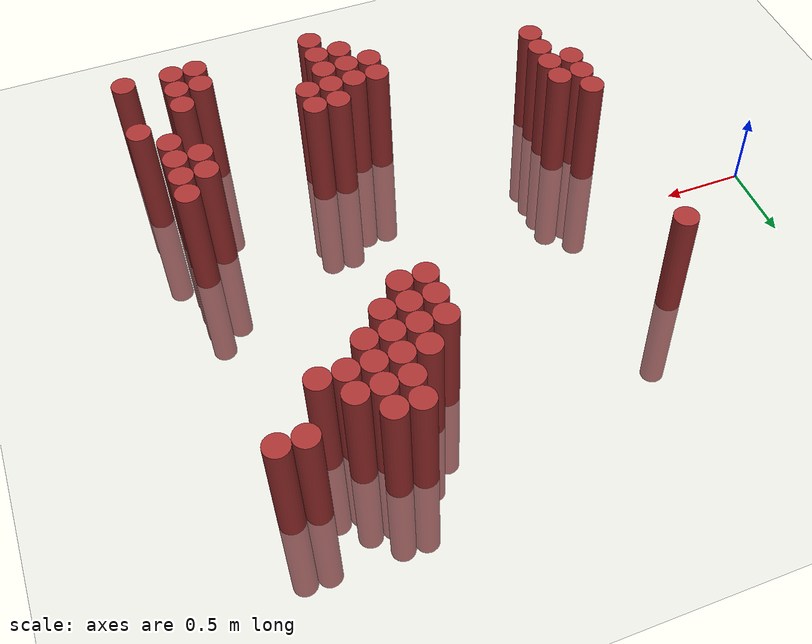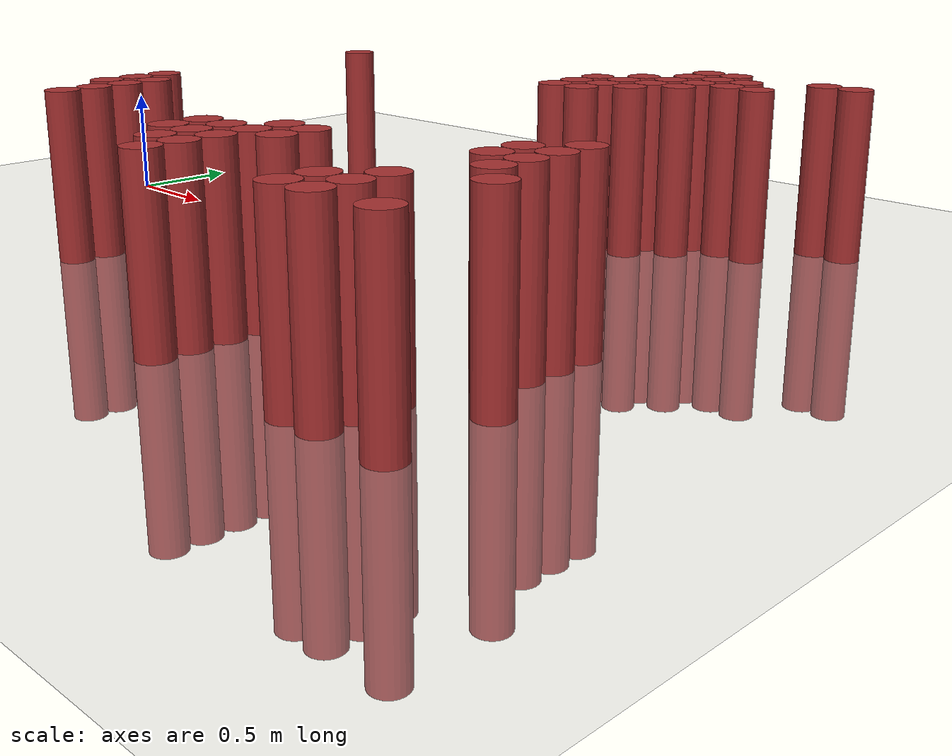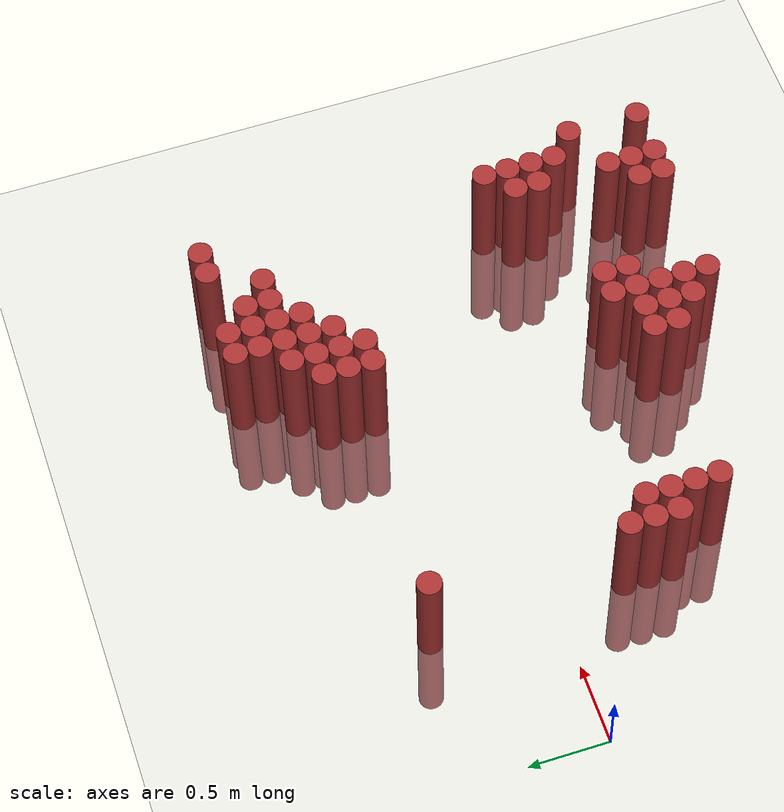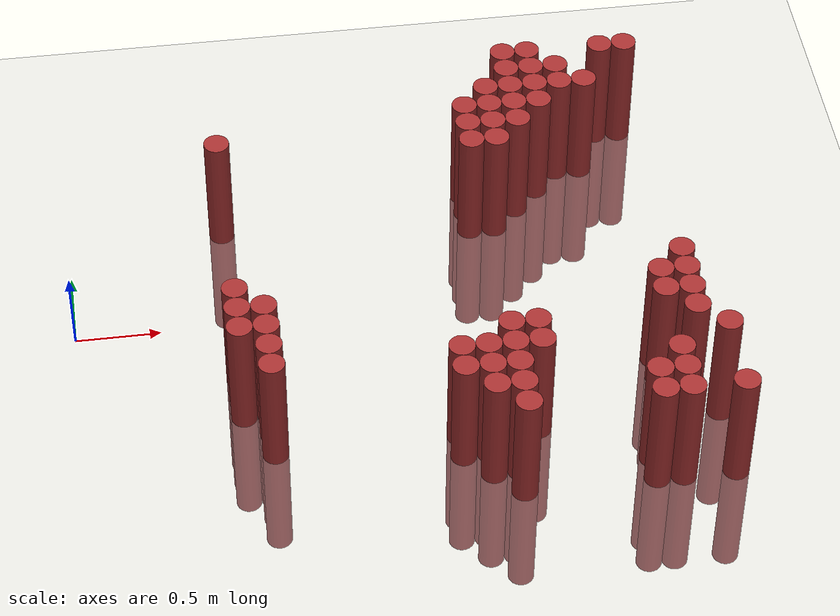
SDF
<sdf version="1.6">
 <world name="default">
  <model name="ground_plane">
   <static>1</static>
   <link name="link">
    <collision name="collision">
     <geometry><plane><normal>0 0 1</normal><size>100 100</size></plane></geometry>
     <surface><friction><ode><mu>100</mu><mu2>50</mu2></ode></friction></surface>
    </collision>
    <visual name="visual">
     <cast_shadows>0</cast_shadows>
     <geometry><plane><normal>0 0 1</normal><size>100 100</size></plane></geometry>
     <material>
      <script><uri>file://media/materials/scripts/gazebo.material</uri><name>Gazebo/Grey</name></script>
     </material>
    </visual>
   </link>
  </model>
  <model name="unit_cylinder_427">
   <static>1</static>
   <pose>0.925000 -0.725000 0.000000 0.000000 0.000000 0.000000</pose>
   <link name="link">
    <inertial>
     <mass>1</mass>
     <inertia><ixx>0.145833</ixx><ixy>0</ixy><ixz>0</ixz><iyy>0.145833</iyy><iyz>0</iyz><izz>0.125</izz></inertia>
    </inertial>
    <collision name="collision">
     <geometry><cylinder><radius>0.075000</radius><length>1.5</length></cylinder></geometry>
    </collision>
    <visual name="visual">
     <geometry><cylinder><radius>0.075000</radius><length>1.5</length></cylinder></geometry>
     <material>
      <ambient>0.648000 0.192000 0.192000 1</ambient>
      <diffuse>0.648000 0.192000 0.192000 1</diffuse>
     </material>
     <material>
      <script><name>Gazebo/Grey</name><uri>file://media/materials/scripts/gazebo.material</uri></script>
     </material>
    </visual>
   </link>
  </model>
  <model name="unit_cylinder_428">
   <static>1</static>
   <pose>0.925000 -0.575000 0.000000 0.000000 0.000000 0.000000</pose>
   <link name="link">
    <inertial>
     <mass>1</mass>
     <inertia><ixx>0.145833</ixx><ixy>0</ixy><ixz>0</ixz><iyy>0.145833</iyy><iyz>0</iyz><izz>0.125</izz></inertia>
    </inertial>
    <collision name="collision">
     <geometry><cylinder><radius>0.075000</radius><length>1.5</length></cylinder></geometry>
    </collision>
    <visual name="visual">
     <geometry><cylinder><radius>0.075000</radius><length>1.5</length></cylinder></geometry>
     <material>
      <ambient>0.648000 0.192000 0.192000 1</ambient>
      <diffuse>0.648000 0.192000 0.192000 1</diffuse>
     </material>
     <material>
      <script><name>Gazebo/Grey</name><uri>file://media/materials/scripts/gazebo.material</uri></script>
     </material>
    </visual>
   </link>
  </model>
  <model name="unit_cylinder_429">
   <static>1</static>
   <pose>0.925000 -0.425000 0.000000 0.000000 0.000000 0.000000</pose>
   <link name="link">
    <inertial>
     <mass>1</mass>
     <inertia><ixx>0.145833</ixx><ixy>0</ixy><ixz>0</ixz><iyy>0.145833</iyy><iyz>0</iyz><izz>0.125</izz></inertia>
    </inertial>
    <collision name="collision">
     <geometry><cylinder><radius>0.075000</radius><length>1.5</length></cylinder></geometry>
    </collision>
    <visual name="visual">
     <geometry><cylinder><radius>0.075000</radius><length>1.5</length></cylinder></geometry>
     <material>
      <ambient>0.648000 0.192000 0.192000 1</ambient>
      <diffuse>0.648000 0.192000 0.192000 1</diffuse>
     </material>
     <material>
      <script><name>Gazebo/Grey</name><uri>file://media/materials/scripts/gazebo.material</uri></script>
     </material>
    </visual>
   </link>
  </model>
  <model name="unit_cylinder_430">
   <static>1</static>
   <pose>0.925000 0.775000 0.000000 0.000000 0.000000 0.000000</pose>
   <link name="link">
    <inertial>
     <mass>1</mass>
     <inertia><ixx>0.145833</ixx><ixy>0</ixy><ixz>0</ixz><iyy>0.145833</iyy><iyz>0</iyz><izz>0.125</izz></inertia>
    </inertial>
    <collision name="collision">
     <geometry><cylinder><radius>0.075000</radius><length>1.5</length></cylinder></geometry>
    </collision>
    <visual name="visual">
     <geometry><cylinder><radius>0.075000</radius><length>1.5</length></cylinder></geometry>
     <material>
      <ambient>0.648000 0.192000 0.192000 1</ambient>
      <diffuse>0.648000 0.192000 0.192000 1</diffuse>
     </material>
     <material>
      <script><name>Gazebo/Grey</name><uri>file://media/materials/scripts/gazebo.material</uri></script>
     </material>
    </visual>
   </link>
  </model>
  <model name="unit_cylinder_432">
   <static>1</static>
   <pose>1.075000 -1.025000 0.000000 0.000000 0.000000 0.000000</pose>
   <link name="link">
    <inertial>
     <mass>1</mass>
     <inertia><ixx>0.145833</ixx><ixy>0</ixy><ixz>0</ixz><iyy>0.145833</iyy><iyz>0</iyz><izz>0.125</izz></inertia>
    </inertial>
    <collision name="collision">
     <geometry><cylinder><radius>0.075000</radius><length>1.5</length></cylinder></geometry>
    </collision>
    <visual name="visual">
     <geometry><cylinder><radius>0.075000</radius><length>1.5</length></cylinder></geometry>
     <material>
      <ambient>0.648000 0.192000 0.192000 1</ambient>
      <diffuse>0.648000 0.192000 0.192000 1</diffuse>
     </material>
     <material>
      <script><name>Gazebo/Grey</name><uri>file://media/materials/scripts/gazebo.material</uri></script>
     </material>
    </visual>
   </link>
  </model>
  <model name="unit_cylinder_433">
   <static>1</static>
   <pose>1.075000 -0.875000 0.000000 0.000000 0.000000 0.000000</pose>
   <link name="link">
    <inertial>
     <mass>1</mass>
     <inertia><ixx>0.145833</ixx><ixy>0</ixy><ixz>0</ixz><iyy>0.145833</iyy><iyz>0</iyz><izz>0.125</izz></inertia>
    </inertial>
    <collision name="collision">
     <geometry><cylinder><radius>0.075000</radius><length>1.5</length></cylinder></geometry>
    </collision>
    <visual name="visual">
     <geometry><cylinder><radius>0.075000</radius><length>1.5</length></cylinder></geometry>
     <material>
      <ambient>0.648000 0.192000 0.192000 1</ambient>
      <diffuse>0.648000 0.192000 0.192000 1</diffuse>
     </material>
     <material>
      <script><name>Gazebo/Grey</name><uri>file://media/materials/scripts/gazebo.material</uri></script>
     </material>
    </visual>
   </link>
  </model>
  <model name="unit_cylinder_434">
   <static>1</static>
   <pose>1.075000 -0.725000 0.000000 0.000000 0.000000 0.000000</pose>
   <link name="link">
    <inertial>
     <mass>1</mass>
     <inertia><ixx>0.145833</ixx><ixy>0</ixy><ixz>0</ixz><iyy>0.145833</iyy><iyz>0</iyz><izz>0.125</izz></inertia>
    </inertial>
    <collision name="collision">
     <geometry><cylinder><radius>0.075000</radius><length>1.5</length></cylinder></geometry>
    </collision>
    <visual name="visual">
     <geometry><cylinder><radius>0.075000</radius><length>1.5</length></cylinder></geometry>
     <material>
      <ambient>0.648000 0.192000 0.192000 1</ambient>
      <diffuse>0.648000 0.192000 0.192000 1</diffuse>
     </material>
     <material>
      <script><name>Gazebo/Grey</name><uri>file://media/materials/scripts/gazebo.material</uri></script>
     </material>
    </visual>
   </link>
  </model>
  <model name="unit_cylinder_435">
   <static>1</static>
   <pose>1.075000 -0.575000 0.000000 0.000000 0.000000 0.000000</pose>
   <link name="link">
    <inertial>
     <mass>1</mass>
     <inertia><ixx>0.145833</ixx><ixy>0</ixy><ixz>0</ixz><iyy>0.145833</iyy><iyz>0</iyz><izz>0.125</izz></inertia>
    </inertial>
    <collision name="collision">
     <geometry><cylinder><radius>0.075000</radius><length>1.5</length></cylinder></geometry>
    </collision>
    <visual name="visual">
     <geometry><cylinder><radius>0.075000</radius><length>1.5</length></cylinder></geometry>
     <material>
      <ambient>0.648000 0.192000 0.192000 1</ambient>
      <diffuse>0.648000 0.192000 0.192000 1</diffuse>
     </material>
     <material>
      <script><name>Gazebo/Grey</name><uri>file://media/materials/scripts/gazebo.material</uri></script>
     </material>
    </visual>
   </link>
  </model>
  <model name="unit_cylinder_446">
   <static>1</static>
   <pose>2.125000 -1.175000 0.000000 0.000000 0.000000 0.000000</pose>
   <link name="link">
    <inertial>
     <mass>1</mass>
     <inertia><ixx>0.145833</ixx><ixy>0</ixy><ixz>0</ixz><iyy>0.145833</iyy><iyz>0</iyz><izz>0.125</izz></inertia>
    </inertial>
    <collision name="collision">
     <geometry><cylinder><radius>0.075000</radius><length>1.5</length></cylinder></geometry>
    </collision>
    <visual name="visual">
     <geometry><cylinder><radius>0.075000</radius><length>1.5</length></cylinder></geometry>
     <material>
      <ambient>0.648000 0.192000 0.192000 1</ambient>
      <diffuse>0.648000 0.192000 0.192000 1</diffuse>
     </material>
     <material>
      <script><name>Gazebo/Grey</name><uri>file://media/materials/scripts/gazebo.material</uri></script>
     </material>
    </visual>
   </link>
  </model>
  <model name="unit_cylinder_447">
   <static>1</static>
   <pose>2.125000 -1.025000 0.000000 0.000000 0.000000 0.000000</pose>
   <link name="link">
    <inertial>
     <mass>1</mass>
     <inertia><ixx>0.145833</ixx><ixy>0</ixy><ixz>0</ixz><iyy>0.145833</iyy><iyz>0</iyz><izz>0.125</izz></inertia>
    </inertial>
    <collision name="collision">
     <geometry><cylinder><radius>0.075000</radius><length>1.5</length></cylinder></geometry>
    </collision>
    <visual name="visual">
     <geometry><cylinder><radius>0.075000</radius><length>1.5</length></cylinder></geometry>
     <material>
      <ambient>0.648000 0.192000 0.192000 1</ambient>
      <diffuse>0.648000 0.192000 0.192000 1</diffuse>
     </material>
     <material>
      <script><name>Gazebo/Grey</name><uri>file://media/materials/scripts/gazebo.material</uri></script>
     </material>
    </visual>
   </link>
  </model>
  <model name="unit_cylinder_457">
   <static>1</static>
   <pose>2.275000 -1.325000 0.000000 0.000000 0.000000 0.000000</pose>
   <link name="link">
    <inertial>
     <mass>1</mass>
     <inertia><ixx>0.145833</ixx><ixy>0</ixy><ixz>0</ixz><iyy>0.145833</iyy><iyz>0</iyz><izz>0.125</izz></inertia>
    </inertial>
    <collision name="collision">
     <geometry><cylinder><radius>0.075000</radius><length>1.5</length></cylinder></geometry>
    </collision>
    <visual name="visual">
     <geometry><cylinder><radius>0.075000</radius><length>1.5</length></cylinder></geometry>
     <material>
      <ambient>0.648000 0.192000 0.192000 1</ambient>
      <diffuse>0.648000 0.192000 0.192000 1</diffuse>
     </material>
     <material>
      <script><name>Gazebo/Grey</name><uri>file://media/materials/scripts/gazebo.material</uri></script>
     </material>
    </visual>
   </link>
  </model>
  <model name="unit_cylinder_458">
   <static>1</static>
   <pose>2.275000 -1.175000 0.000000 0.000000 0.000000 0.000000</pose>
   <link name="link">
    <inertial>
     <mass>1</mass>
     <inertia><ixx>0.145833</ixx><ixy>0</ixy><ixz>0</ixz><iyy>0.145833</iyy><iyz>0</iyz><izz>0.125</izz></inertia>
    </inertial>
    <collision name="collision">
     <geometry><cylinder><radius>0.075000</radius><length>1.5</length></cylinder></geometry>
    </collision>
    <visual name="visual">
     <geometry><cylinder><radius>0.075000</radius><length>1.5</length></cylinder></geometry>
     <material>
      <ambient>0.648000 0.192000 0.192000 1</ambient>
      <diffuse>0.648000 0.192000 0.192000 1</diffuse>
     </material>
     <material>
      <script><name>Gazebo/Grey</name><uri>file://media/materials/scripts/gazebo.material</uri></script>
     </material>
    </visual>
   </link>
  </model>
  <model name="unit_cylinder_459">
   <static>1</static>
   <pose>2.275000 -1.025000 0.000000 0.000000 0.000000 0.000000</pose>
   <link name="link">
    <inertial>
     <mass>1</mass>
     <inertia><ixx>0.145833</ixx><ixy>0</ixy><ixz>0</ixz><iyy>0.145833</iyy><iyz>0</iyz><izz>0.125</izz></inertia>
    </inertial>
    <collision name="collision">
     <geometry><cylinder><radius>0.075000</radius><length>1.5</length></cylinder></geometry>
    </collision>
    <visual name="visual">
     <geometry><cylinder><radius>0.075000</radius><length>1.5</length></cylinder></geometry>
     <material>
      <ambient>0.648000 0.192000 0.192000 1</ambient>
      <diffuse>0.648000 0.192000 0.192000 1</diffuse>
     </material>
     <material>
      <script><name>Gazebo/Grey</name><uri>file://media/materials/scripts/gazebo.material</uri></script>
     </material>
    </visual>
   </link>
  </model>
  <model name="unit_cylinder_463">
   <static>1</static>
   <pose>2.425000 -1.475000 0.000000 0.000000 0.000000 0.000000</pose>
   <link name="link">
    <inertial>
     <mass>1</mass>
     <inertia><ixx>0.145833</ixx><ixy>0</ixy><ixz>0</ixz><iyy>0.145833</iyy><iyz>0</iyz><izz>0.125</izz></inertia>
    </inertial>
    <collision name="collision">
     <geometry><cylinder><radius>0.075000</radius><length>1.5</length></cylinder></geometry>
    </collision>
    <visual name="visual">
     <geometry><cylinder><radius>0.075000</radius><length>1.5</length></cylinder></geometry>
     <material>
      <ambient>0.648000 0.192000 0.192000 1</ambient>
      <diffuse>0.648000 0.192000 0.192000 1</diffuse>
     </material>
     <material>
      <script><name>Gazebo/Grey</name><uri>file://media/materials/scripts/gazebo.material</uri></script>
     </material>
    </visual>
   </link>
  </model>
  <model name="unit_cylinder_464">
   <static>1</static>
   <pose>2.425000 -1.325000 0.000000 0.000000 0.000000 0.000000</pose>
   <link name="link">
    <inertial>
     <mass>1</mass>
     <inertia><ixx>0.145833</ixx><ixy>0</ixy><ixz>0</ixz><iyy>0.145833</iyy><iyz>0</iyz><izz>0.125</izz></inertia>
    </inertial>
    <collision name="collision">
     <geometry><cylinder><radius>0.075000</radius><length>1.5</length></cylinder></geometry>
    </collision>
    <visual name="visual">
     <geometry><cylinder><radius>0.075000</radius><length>1.5</length></cylinder></geometry>
     <material>
      <ambient>0.648000 0.192000 0.192000 1</ambient>
      <diffuse>0.648000 0.192000 0.192000 1</diffuse>
     </material>
     <material>
      <script><name>Gazebo/Grey</name><uri>file://media/materials/scripts/gazebo.material</uri></script>
     </material>
    </visual>
   </link>
  </model>
  <model name="unit_cylinder_465">
   <static>1</static>
   <pose>2.425000 -1.175000 0.000000 0.000000 0.000000 0.000000</pose>
   <link name="link">
    <inertial>
     <mass>1</mass>
     <inertia><ixx>0.145833</ixx><ixy>0</ixy><ixz>0</ixz><iyy>0.145833</iyy><iyz>0</iyz><izz>0.125</izz></inertia>
    </inertial>
    <collision name="collision">
     <geometry><cylinder><radius>0.075000</radius><length>1.5</length></cylinder></geometry>
    </collision>
    <visual name="visual">
     <geometry><cylinder><radius>0.075000</radius><length>1.5</length></cylinder></geometry>
     <material>
      <ambient>0.648000 0.192000 0.192000 1</ambient>
      <diffuse>0.648000 0.192000 0.192000 1</diffuse>
     </material>
     <material>
      <script><name>Gazebo/Grey</name><uri>file://media/materials/scripts/gazebo.material</uri></script>
     </material>
    </visual>
   </link>
  </model>
  <model name="unit_cylinder_466">
   <static>1</static>
   <pose>2.425000 -1.025000 0.000000 0.000000 0.000000 0.000000</pose>
   <link name="link">
    <inertial>
     <mass>1</mass>
     <inertia><ixx>0.145833</ixx><ixy>0</ixy><ixz>0</ixz><iyy>0.145833</iyy><iyz>0</iyz><izz>0.125</izz></inertia>
    </inertial>
    <collision name="collision">
     <geometry><cylinder><radius>0.075000</radius><length>1.5</length></cylinder></geometry>
    </collision>
    <visual name="visual">
     <geometry><cylinder><radius>0.075000</radius><length>1.5</length></cylinder></geometry>
     <material>
      <ambient>0.648000 0.192000 0.192000 1</ambient>
      <diffuse>0.648000 0.192000 0.192000 1</diffuse>
     </material>
     <material>
      <script><name>Gazebo/Grey</name><uri>file://media/materials/scripts/gazebo.material</uri></script>
     </material>
    </visual>
   </link>
  </model>
  <model name="unit_cylinder_467">
   <static>1</static>
   <pose>2.425000 -0.875000 0.000000 0.000000 0.000000 0.000000</pose>
   <link name="link">
    <inertial>
     <mass>1</mass>
     <inertia><ixx>0.145833</ixx><ixy>0</ixy><ixz>0</ixz><iyy>0.145833</iyy><iyz>0</iyz><izz>0.125</izz></inertia>
    </inertial>
    <collision name="collision">
     <geometry><cylinder><radius>0.075000</radius><length>1.5</length></cylinder></geometry>
    </collision>
    <visual name="visual">
     <geometry><cylinder><radius>0.075000</radius><length>1.5</length></cylinder></geometry>
     <material>
      <ambient>0.648000 0.192000 0.192000 1</ambient>
      <diffuse>0.648000 0.192000 0.192000 1</diffuse>
     </material>
     <material>
      <script><name>Gazebo/Grey</name><uri>file://media/materials/scripts/gazebo.material</uri></script>
     </material>
    </visual>
   </link>
  </model>
  <model name="unit_cylinder_468">
   <static>1</static>
   <pose>2.425000 0.625000 0.000000 0.000000 0.000000 0.000000</pose>
   <link name="link">
    <inertial>
     <mass>1</mass>
     <inertia><ixx>0.145833</ixx><ixy>0</ixy><ixz>0</ixz><iyy>0.145833</iyy><iyz>0</iyz><izz>0.125</izz></inertia>
    </inertial>
    <collision name="collision">
     <geometry><cylinder><radius>0.075000</radius><length>1.5</length></cylinder></geometry>
    </collision>
    <visual name="visual">
     <geometry><cylinder><radius>0.075000</radius><length>1.5</length></cylinder></geometry>
     <material>
      <ambient>0.648000 0.192000 0.192000 1</ambient>
      <diffuse>0.648000 0.192000 0.192000 1</diffuse>
     </material>
     <material>
      <script><name>Gazebo/Grey</name><uri>file://media/materials/scripts/gazebo.material</uri></script>
     </material>
    </visual>
   </link>
  </model>
  <model name="unit_cylinder_469">
   <static>1</static>
   <pose>2.425000 0.775000 0.000000 0.000000 0.000000 0.000000</pose>
   <link name="link">
    <inertial>
     <mass>1</mass>
     <inertia><ixx>0.145833</ixx><ixy>0</ixy><ixz>0</ixz><iyy>0.145833</iyy><iyz>0</iyz><izz>0.125</izz></inertia>
    </inertial>
    <collision name="collision">
     <geometry><cylinder><radius>0.075000</radius><length>1.5</length></cylinder></geometry>
    </collision>
    <visual name="visual">
     <geometry><cylinder><radius>0.075000</radius><length>1.5</length></cylinder></geometry>
     <material>
      <ambient>0.648000 0.192000 0.192000 1</ambient>
      <diffuse>0.648000 0.192000 0.192000 1</diffuse>
     </material>
     <material>
      <script><name>Gazebo/Grey</name><uri>file://media/materials/scripts/gazebo.material</uri></script>
     </material>
    </visual>
   </link>
  </model>
  <model name="unit_cylinder_470">
   <static>1</static>
   <pose>2.425000 0.925000 0.000000 0.000000 0.000000 0.000000</pose>
   <link name="link">
    <inertial>
     <mass>1</mass>
     <inertia><ixx>0.145833</ixx><ixy>0</ixy><ixz>0</ixz><iyy>0.145833</iyy><iyz>0</iyz><izz>0.125</izz></inertia>
    </inertial>
    <collision name="collision">
     <geometry><cylinder><radius>0.075000</radius><length>1.5</length></cylinder></geometry>
    </collision>
    <visual name="visual">
     <geometry><cylinder><radius>0.075000</radius><length>1.5</length></cylinder></geometry>
     <material>
      <ambient>0.648000 0.192000 0.192000 1</ambient>
      <diffuse>0.648000 0.192000 0.192000 1</diffuse>
     </material>
     <material>
      <script><name>Gazebo/Grey</name><uri>file://media/materials/scripts/gazebo.material</uri></script>
     </material>
    </visual>
   </link>
  </model>
  <model name="unit_cylinder_475">
   <static>1</static>
   <pose>2.575000 -1.025000 0.000000 0.000000 0.000000 0.000000</pose>
   <link name="link">
    <inertial>
     <mass>1</mass>
     <inertia><ixx>0.145833</ixx><ixy>0</ixy><ixz>0</ixz><iyy>0.145833</iyy><iyz>0</iyz><izz>0.125</izz></inertia>
    </inertial>
    <collision name="collision">
     <geometry><cylinder><radius>0.075000</radius><length>1.5</length></cylinder></geometry>
    </collision>
    <visual name="visual">
     <geometry><cylinder><radius>0.075000</radius><length>1.5</length></cylinder></geometry>
     <material>
      <ambient>0.648000 0.192000 0.192000 1</ambient>
      <diffuse>0.648000 0.192000 0.192000 1</diffuse>
     </material>
     <material>
      <script><name>Gazebo/Grey</name><uri>file://media/materials/scripts/gazebo.material</uri></script>
     </material>
    </visual>
   </link>
  </model>
  <model name="unit_cylinder_476">
   <static>1</static>
   <pose>2.575000 -0.875000 0.000000 0.000000 0.000000 0.000000</pose>
   <link name="link">
    <inertial>
     <mass>1</mass>
     <inertia><ixx>0.145833</ixx><ixy>0</ixy><ixz>0</ixz><iyy>0.145833</iyy><iyz>0</iyz><izz>0.125</izz></inertia>
    </inertial>
    <collision name="collision">
     <geometry><cylinder><radius>0.075000</radius><length>1.5</length></cylinder></geometry>
    </collision>
    <visual name="visual">
     <geometry><cylinder><radius>0.075000</radius><length>1.5</length></cylinder></geometry>
     <material>
      <ambient>0.648000 0.192000 0.192000 1</ambient>
      <diffuse>0.648000 0.192000 0.192000 1</diffuse>
     </material>
     <material>
      <script><name>Gazebo/Grey</name><uri>file://media/materials/scripts/gazebo.material</uri></script>
     </material>
    </visual>
   </link>
  </model>
  <model name="unit_cylinder_477">
   <static>1</static>
   <pose>2.575000 0.625000 0.000000 0.000000 0.000000 0.000000</pose>
   <link name="link">
    <inertial>
     <mass>1</mass>
     <inertia><ixx>0.145833</ixx><ixy>0</ixy><ixz>0</ixz><iyy>0.145833</iyy><iyz>0</iyz><izz>0.125</izz></inertia>
    </inertial>
    <collision name="collision">
     <geometry><cylinder><radius>0.075000</radius><length>1.5</length></cylinder></geometry>
    </collision>
    <visual name="visual">
     <geometry><cylinder><radius>0.075000</radius><length>1.5</length></cylinder></geometry>
     <material>
      <ambient>0.648000 0.192000 0.192000 1</ambient>
      <diffuse>0.648000 0.192000 0.192000 1</diffuse>
     </material>
     <material>
      <script><name>Gazebo/Grey</name><uri>file://media/materials/scripts/gazebo.material</uri></script>
     </material>
    </visual>
   </link>
  </model>
  <model name="unit_cylinder_478">
   <static>1</static>
   <pose>2.575000 0.775000 0.000000 0.000000 0.000000 0.000000</pose>
   <link name="link">
    <inertial>
     <mass>1</mass>
     <inertia><ixx>0.145833</ixx><ixy>0</ixy><ixz>0</ixz><iyy>0.145833</iyy><iyz>0</iyz><izz>0.125</izz></inertia>
    </inertial>
    <collision name="collision">
     <geometry><cylinder><radius>0.075000</radius><length>1.5</length></cylinder></geometry>
    </collision>
    <visual name="visual">
     <geometry><cylinder><radius>0.075000</radius><length>1.5</length></cylinder></geometry>
     <material>
      <ambient>0.648000 0.192000 0.192000 1</ambient>
      <diffuse>0.648000 0.192000 0.192000 1</diffuse>
     </material>
     <material>
      <script><name>Gazebo/Grey</name><uri>file://media/materials/scripts/gazebo.material</uri></script>
     </material>
    </visual>
   </link>
  </model>
  <model name="unit_cylinder_479">
   <static>1</static>
   <pose>2.575000 0.925000 0.000000 0.000000 0.000000 0.000000</pose>
   <link name="link">
    <inertial>
     <mass>1</mass>
     <inertia><ixx>0.145833</ixx><ixy>0</ixy><ixz>0</ixz><iyy>0.145833</iyy><iyz>0</iyz><izz>0.125</izz></inertia>
    </inertial>
    <collision name="collision">
     <geometry><cylinder><radius>0.075000</radius><length>1.5</length></cylinder></geometry>
    </collision>
    <visual name="visual">
     <geometry><cylinder><radius>0.075000</radius><length>1.5</length></cylinder></geometry>
     <material>
      <ambient>0.648000 0.192000 0.192000 1</ambient>
      <diffuse>0.648000 0.192000 0.192000 1</diffuse>
     </material>
     <material>
      <script><name>Gazebo/Grey</name><uri>file://media/materials/scripts/gazebo.material</uri></script>
     </material>
    </visual>
   </link>
  </model>
  <model name="unit_cylinder_480">
   <static>1</static>
   <pose>2.575000 1.075000 0.000000 0.000000 0.000000 0.000000</pose>
   <link name="link">
    <inertial>
     <mass>1</mass>
     <inertia><ixx>0.145833</ixx><ixy>0</ixy><ixz>0</ixz><iyy>0.145833</iyy><iyz>0</iyz><izz>0.125</izz></inertia>
    </inertial>
    <collision name="collision">
     <geometry><cylinder><radius>0.075000</radius><length>1.5</length></cylinder></geometry>
    </collision>
    <visual name="visual">
     <geometry><cylinder><radius>0.075000</radius><length>1.5</length></cylinder></geometry>
     <material>
      <ambient>0.648000 0.192000 0.192000 1</ambient>
      <diffuse>0.648000 0.192000 0.192000 1</diffuse>
     </material>
     <material>
      <script><name>Gazebo/Grey</name><uri>file://media/materials/scripts/gazebo.material</uri></script>
     </material>
    </visual>
   </link>
  </model>
  <model name="unit_cylinder_486">
   <static>1</static>
   <pose>2.725000 0.775000 0.000000 0.000000 0.000000 0.000000</pose>
   <link name="link">
    <inertial>
     <mass>1</mass>
     <inertia><ixx>0.145833</ixx><ixy>0</ixy><ixz>0</ixz><iyy>0.145833</iyy><iyz>0</iyz><izz>0.125</izz></inertia>
    </inertial>
    <collision name="collision">
     <geometry><cylinder><radius>0.075000</radius><length>1.5</length></cylinder></geometry>
    </collision>
    <visual name="visual">
     <geometry><cylinder><radius>0.075000</radius><length>1.5</length></cylinder></geometry>
     <material>
      <ambient>0.648000 0.192000 0.192000 1</ambient>
      <diffuse>0.648000 0.192000 0.192000 1</diffuse>
     </material>
     <material>
      <script><name>Gazebo/Grey</name><uri>file://media/materials/scripts/gazebo.material</uri></script>
     </material>
    </visual>
   </link>
  </model>
  <model name="unit_cylinder_487">
   <static>1</static>
   <pose>2.725000 0.925000 0.000000 0.000000 0.000000 0.000000</pose>
   <link name="link">
    <inertial>
     <mass>1</mass>
     <inertia><ixx>0.145833</ixx><ixy>0</ixy><ixz>0</ixz><iyy>0.145833</iyy><iyz>0</iyz><izz>0.125</izz></inertia>
    </inertial>
    <collision name="collision">
     <geometry><cylinder><radius>0.075000</radius><length>1.5</length></cylinder></geometry>
    </collision>
    <visual name="visual">
     <geometry><cylinder><radius>0.075000</radius><length>1.5</length></cylinder></geometry>
     <material>
      <ambient>0.648000 0.192000 0.192000 1</ambient>
      <diffuse>0.648000 0.192000 0.192000 1</diffuse>
     </material>
     <material>
      <script><name>Gazebo/Grey</name><uri>file://media/materials/scripts/gazebo.material</uri></script>
     </material>
    </visual>
   </link>
  </model>
  <model name="unit_cylinder_488">
   <static>1</static>
   <pose>2.725000 1.075000 0.000000 0.000000 0.000000 0.000000</pose>
   <link name="link">
    <inertial>
     <mass>1</mass>
     <inertia><ixx>0.145833</ixx><ixy>0</ixy><ixz>0</ixz><iyy>0.145833</iyy><iyz>0</iyz><izz>0.125</izz></inertia>
    </inertial>
    <collision name="collision">
     <geometry><cylinder><radius>0.075000</radius><length>1.5</length></cylinder></geometry>
    </collision>
    <visual name="visual">
     <geometry><cylinder><radius>0.075000</radius><length>1.5</length></cylinder></geometry>
     <material>
      <ambient>0.648000 0.192000 0.192000 1</ambient>
      <diffuse>0.648000 0.192000 0.192000 1</diffuse>
     </material>
     <material>
      <script><name>Gazebo/Grey</name><uri>file://media/materials/scripts/gazebo.material</uri></script>
     </material>
    </visual>
   </link>
  </model>
  <model name="unit_cylinder_489">
   <static>1</static>
   <pose>2.725000 1.225000 0.000000 0.000000 0.000000 0.000000</pose>
   <link name="link">
    <inertial>
     <mass>1</mass>
     <inertia><ixx>0.145833</ixx><ixy>0</ixy><ixz>0</ixz><iyy>0.145833</iyy><iyz>0</iyz><izz>0.125</izz></inertia>
    </inertial>
    <collision name="collision">
     <geometry><cylinder><radius>0.075000</radius><length>1.5</length></cylinder></geometry>
    </collision>
    <visual name="visual">
     <geometry><cylinder><radius>0.075000</radius><length>1.5</length></cylinder></geometry>
     <material>
      <ambient>0.648000 0.192000 0.192000 1</ambient>
      <diffuse>0.648000 0.192000 0.192000 1</diffuse>
     </material>
     <material>
      <script><name>Gazebo/Grey</name><uri>file://media/materials/scripts/gazebo.material</uri></script>
     </material>
    </visual>
   </link>
  </model>
  <model name="unit_cylinder_490">
   <static>1</static>
   <pose>2.725000 1.375000 0.000000 0.000000 0.000000 0.000000</pose>
   <link name="link">
    <inertial>
     <mass>1</mass>
     <inertia><ixx>0.145833</ixx><ixy>0</ixy><ixz>0</ixz><iyy>0.145833</iyy><iyz>0</iyz><izz>0.125</izz></inertia>
    </inertial>
    <collision name="collision">
     <geometry><cylinder><radius>0.075000</radius><length>1.5</length></cylinder></geometry>
    </collision>
    <visual name="visual">
     <geometry><cylinder><radius>0.075000</radius><length>1.5</length></cylinder></geometry>
     <material>
      <ambient>0.648000 0.192000 0.192000 1</ambient>
      <diffuse>0.648000 0.192000 0.192000 1</diffuse>
     </material>
     <material>
      <script><name>Gazebo/Grey</name><uri>file://media/materials/scripts/gazebo.material</uri></script>
     </material>
    </visual>
   </link>
  </model>
  <model name="unit_cylinder_500">
   <static>1</static>
   <pose>2.875000 0.925000 0.000000 0.000000 0.000000 0.000000</pose>
   <link name="link">
    <inertial>
     <mass>1</mass>
     <inertia><ixx>0.145833</ixx><ixy>0</ixy><ixz>0</ixz><iyy>0.145833</iyy><iyz>0</iyz><izz>0.125</izz></inertia>
    </inertial>
    <collision name="collision">
     <geometry><cylinder><radius>0.075000</radius><length>1.5</length></cylinder></geometry>
    </collision>
    <visual name="visual">
     <geometry><cylinder><radius>0.075000</radius><length>1.5</length></cylinder></geometry>
     <material>
      <ambient>0.648000 0.192000 0.192000 1</ambient>
      <diffuse>0.648000 0.192000 0.192000 1</diffuse>
     </material>
     <material>
      <script><name>Gazebo/Grey</name><uri>file://media/materials/scripts/gazebo.material</uri></script>
     </material>
    </visual>
   </link>
  </model>
  <model name="unit_cylinder_501">
   <static>1</static>
   <pose>2.875000 1.075000 0.000000 0.000000 0.000000 0.000000</pose>
   <link name="link">
    <inertial>
     <mass>1</mass>
     <inertia><ixx>0.145833</ixx><ixy>0</ixy><ixz>0</ixz><iyy>0.145833</iyy><iyz>0</iyz><izz>0.125</izz></inertia>
    </inertial>
    <collision name="collision">
     <geometry><cylinder><radius>0.075000</radius><length>1.5</length></cylinder></geometry>
    </collision>
    <visual name="visual">
     <geometry><cylinder><radius>0.075000</radius><length>1.5</length></cylinder></geometry>
     <material>
      <ambient>0.648000 0.192000 0.192000 1</ambient>
      <diffuse>0.648000 0.192000 0.192000 1</diffuse>
     </material>
     <material>
      <script><name>Gazebo/Grey</name><uri>file://media/materials/scripts/gazebo.material</uri></script>
     </material>
    </visual>
   </link>
  </model>
  <model name="unit_cylinder_502">
   <static>1</static>
   <pose>2.875000 1.225000 0.000000 0.000000 0.000000 0.000000</pose>
   <link name="link">
    <inertial>
     <mass>1</mass>
     <inertia><ixx>0.145833</ixx><ixy>0</ixy><ixz>0</ixz><iyy>0.145833</iyy><iyz>0</iyz><izz>0.125</izz></inertia>
    </inertial>
    <collision name="collision">
     <geometry><cylinder><radius>0.075000</radius><length>1.5</length></cylinder></geometry>
    </collision>
    <visual name="visual">
     <geometry><cylinder><radius>0.075000</radius><length>1.5</length></cylinder></geometry>
     <material>
      <ambient>0.648000 0.192000 0.192000 1</ambient>
      <diffuse>0.648000 0.192000 0.192000 1</diffuse>
     </material>
     <material>
      <script><name>Gazebo/Grey</name><uri>file://media/materials/scripts/gazebo.material</uri></script>
     </material>
    </visual>
   </link>
  </model>
  <model name="unit_cylinder_503">
   <static>1</static>
   <pose>2.875000 1.375000 0.000000 0.000000 0.000000 0.000000</pose>
   <link name="link">
    <inertial>
     <mass>1</mass>
     <inertia><ixx>0.145833</ixx><ixy>0</ixy><ixz>0</ixz><iyy>0.145833</iyy><iyz>0</iyz><izz>0.125</izz></inertia>
    </inertial>
    <collision name="collision">
     <geometry><cylinder><radius>0.075000</radius><length>1.5</length></cylinder></geometry>
    </collision>
    <visual name="visual">
     <geometry><cylinder><radius>0.075000</radius><length>1.5</length></cylinder></geometry>
     <material>
      <ambient>0.648000 0.192000 0.192000 1</ambient>
      <diffuse>0.648000 0.192000 0.192000 1</diffuse>
     </material>
     <material>
      <script><name>Gazebo/Grey</name><uri>file://media/materials/scripts/gazebo.material</uri></script>
     </material>
    </visual>
   </link>
  </model>
  <model name="unit_cylinder_514">
   <static>1</static>
   <pose>3.025000 1.075000 0.000000 0.000000 0.000000 0.000000</pose>
   <link name="link">
    <inertial>
     <mass>1</mass>
     <inertia><ixx>0.145833</ixx><ixy>0</ixy><ixz>0</ixz><iyy>0.145833</iyy><iyz>0</iyz><izz>0.125</izz></inertia>
    </inertial>
    <collision name="collision">
     <geometry><cylinder><radius>0.075000</radius><length>1.5</length></cylinder></geometry>
    </collision>
    <visual name="visual">
     <geometry><cylinder><radius>0.075000</radius><length>1.5</length></cylinder></geometry>
     <material>
      <ambient>0.648000 0.192000 0.192000 1</ambient>
      <diffuse>0.648000 0.192000 0.192000 1</diffuse>
     </material>
     <material>
      <script><name>Gazebo/Grey</name><uri>file://media/materials/scripts/gazebo.material</uri></script>
     </material>
    </visual>
   </link>
  </model>
  <model name="unit_cylinder_515">
   <static>1</static>
   <pose>3.025000 1.225000 0.000000 0.000000 0.000000 0.000000</pose>
   <link name="link">
    <inertial>
     <mass>1</mass>
     <inertia><ixx>0.145833</ixx><ixy>0</ixy><ixz>0</ixz><iyy>0.145833</iyy><iyz>0</iyz><izz>0.125</izz></inertia>
    </inertial>
    <collision name="collision">
     <geometry><cylinder><radius>0.075000</radius><length>1.5</length></cylinder></geometry>
    </collision>
    <visual name="visual">
     <geometry><cylinder><radius>0.075000</radius><length>1.5</length></cylinder></geometry>
     <material>
      <ambient>0.648000 0.192000 0.192000 1</ambient>
      <diffuse>0.648000 0.192000 0.192000 1</diffuse>
     </material>
     <material>
      <script><name>Gazebo/Grey</name><uri>file://media/materials/scripts/gazebo.material</uri></script>
     </material>
    </visual>
   </link>
  </model>
  <model name="unit_cylinder_525">
   <static>1</static>
   <pose>3.175000 -1.475000 0.000000 0.000000 0.000000 0.000000</pose>
   <link name="link">
    <inertial>
     <mass>1</mass>
     <inertia><ixx>0.145833</ixx><ixy>0</ixy><ixz>0</ixz><iyy>0.145833</iyy><iyz>0</iyz><izz>0.125</izz></inertia>
    </inertial>
    <collision name="collision">
     <geometry><cylinder><radius>0.075000</radius><length>1.5</length></cylinder></geometry>
    </collision>
    <visual name="visual">
     <geometry><cylinder><radius>0.075000</radius><length>1.5</length></cylinder></geometry>
     <material>
      <ambient>0.648000 0.192000 0.192000 1</ambient>
      <diffuse>0.648000 0.192000 0.192000 1</diffuse>
     </material>
     <material>
      <script><name>Gazebo/Grey</name><uri>file://media/materials/scripts/gazebo.material</uri></script>
     </material>
    </visual>
   </link>
  </model>
  <model name="unit_cylinder_526">
   <static>1</static>
   <pose>3.175000 -1.325000 0.000000 0.000000 0.000000 0.000000</pose>
   <link name="link">
    <inertial>
     <mass>1</mass>
     <inertia><ixx>0.145833</ixx><ixy>0</ixy><ixz>0</ixz><iyy>0.145833</iyy><iyz>0</iyz><izz>0.125</izz></inertia>
    </inertial>
    <collision name="collision">
     <geometry><cylinder><radius>0.075000</radius><length>1.5</length></cylinder></geometry>
    </collision>
    <visual name="visual">
     <geometry><cylinder><radius>0.075000</radius><length>1.5</length></cylinder></geometry>
     <material>
      <ambient>0.648000 0.192000 0.192000 1</ambient>
      <diffuse>0.648000 0.192000 0.192000 1</diffuse>
     </material>
     <material>
      <script><name>Gazebo/Grey</name><uri>file://media/materials/scripts/gazebo.material</uri></script>
     </material>
    </visual>
   </link>
  </model>
  <model name="unit_cylinder_527">
   <static>1</static>
   <pose>3.175000 1.075000 0.000000 0.000000 0.000000 0.000000</pose>
   <link name="link">
    <inertial>
     <mass>1</mass>
     <inertia><ixx>0.145833</ixx><ixy>0</ixy><ixz>0</ixz><iyy>0.145833</iyy><iyz>0</iyz><izz>0.125</izz></inertia>
    </inertial>
    <collision name="collision">
     <geometry><cylinder><radius>0.075000</radius><length>1.5</length></cylinder></geometry>
    </collision>
    <visual name="visual">
     <geometry><cylinder><radius>0.075000</radius><length>1.5</length></cylinder></geometry>
     <material>
      <ambient>0.648000 0.192000 0.192000 1</ambient>
      <diffuse>0.648000 0.192000 0.192000 1</diffuse>
     </material>
     <material>
      <script><name>Gazebo/Grey</name><uri>file://media/materials/scripts/gazebo.material</uri></script>
     </material>
    </visual>
   </link>
  </model>
  <model name="unit_cylinder_532">
   <static>1</static>
   <pose>3.325000 -1.475000 0.000000 0.000000 0.000000 0.000000</pose>
   <link name="link">
    <inertial>
     <mass>1</mass>
     <inertia><ixx>0.145833</ixx><ixy>0</ixy><ixz>0</ixz><iyy>0.145833</iyy><iyz>0</iyz><izz>0.125</izz></inertia>
    </inertial>
    <collision name="collision">
     <geometry><cylinder><radius>0.075000</radius><length>1.5</length></cylinder></geometry>
    </collision>
    <visual name="visual">
     <geometry><cylinder><radius>0.075000</radius><length>1.5</length></cylinder></geometry>
     <material>
      <ambient>0.648000 0.192000 0.192000 1</ambient>
      <diffuse>0.648000 0.192000 0.192000 1</diffuse>
     </material>
     <material>
      <script><name>Gazebo/Grey</name><uri>file://media/materials/scripts/gazebo.material</uri></script>
     </material>
    </visual>
   </link>
  </model>
  <model name="unit_cylinder_533">
   <static>1</static>
   <pose>3.325000 -1.325000 0.000000 0.000000 0.000000 0.000000</pose>
   <link name="link">
    <inertial>
     <mass>1</mass>
     <inertia><ixx>0.145833</ixx><ixy>0</ixy><ixz>0</ixz><iyy>0.145833</iyy><iyz>0</iyz><izz>0.125</izz></inertia>
    </inertial>
    <collision name="collision">
     <geometry><cylinder><radius>0.075000</radius><length>1.5</length></cylinder></geometry>
    </collision>
    <visual name="visual">
     <geometry><cylinder><radius>0.075000</radius><length>1.5</length></cylinder></geometry>
     <material>
      <ambient>0.648000 0.192000 0.192000 1</ambient>
      <diffuse>0.648000 0.192000 0.192000 1</diffuse>
     </material>
     <material>
      <script><name>Gazebo/Grey</name><uri>file://media/materials/scripts/gazebo.material</uri></script>
     </material>
    </visual>
   </link>
  </model>
  <model name="unit_cylinder_534">
   <static>1</static>
   <pose>3.325000 -1.175000 0.000000 0.000000 0.000000 0.000000</pose>
   <link name="link">
    <inertial>
     <mass>1</mass>
     <inertia><ixx>0.145833</ixx><ixy>0</ixy><ixz>0</ixz><iyy>0.145833</iyy><iyz>0</iyz><izz>0.125</izz></inertia>
    </inertial>
    <collision name="collision">
     <geometry><cylinder><radius>0.075000</radius><length>1.5</length></cylinder></geometry>
    </collision>
    <visual name="visual">
     <geometry><cylinder><radius>0.075000</radius><length>1.5</length></cylinder></geometry>
     <material>
      <ambient>0.648000 0.192000 0.192000 1</ambient>
      <diffuse>0.648000 0.192000 0.192000 1</diffuse>
     </material>
     <material>
      <script><name>Gazebo/Grey</name><uri>file://media/materials/scripts/gazebo.material</uri></script>
     </material>
    </visual>
   </link>
  </model>
  <model name="unit_cylinder_535">
   <static>1</static>
   <pose>3.325000 -0.725000 0.000000 0.000000 0.000000 0.000000</pose>
   <link name="link">
    <inertial>
     <mass>1</mass>
     <inertia><ixx>0.145833</ixx><ixy>0</ixy><ixz>0</ixz><iyy>0.145833</iyy><iyz>0</iyz><izz>0.125</izz></inertia>
    </inertial>
    <collision name="collision">
     <geometry><cylinder><radius>0.075000</radius><length>1.5</length></cylinder></geometry>
    </collision>
    <visual name="visual">
     <geometry><cylinder><radius>0.075000</radius><length>1.5</length></cylinder></geometry>
     <material>
      <ambient>0.648000 0.192000 0.192000 1</ambient>
      <diffuse>0.648000 0.192000 0.192000 1</diffuse>
     </material>
     <material>
      <script><name>Gazebo/Grey</name><uri>file://media/materials/scripts/gazebo.material</uri></script>
     </material>
    </visual>
   </link>
  </model>
  <model name="unit_cylinder_536">
   <static>1</static>
   <pose>3.325000 -0.575000 0.000000 0.000000 0.000000 0.000000</pose>
   <link name="link">
    <inertial>
     <mass>1</mass>
     <inertia><ixx>0.145833</ixx><ixy>0</ixy><ixz>0</ixz><iyy>0.145833</iyy><iyz>0</iyz><izz>0.125</izz></inertia>
    </inertial>
    <collision name="collision">
     <geometry><cylinder><radius>0.075000</radius><length>1.5</length></cylinder></geometry>
    </collision>
    <visual name="visual">
     <geometry><cylinder><radius>0.075000</radius><length>1.5</length></cylinder></geometry>
     <material>
      <ambient>0.648000 0.192000 0.192000 1</ambient>
      <diffuse>0.648000 0.192000 0.192000 1</diffuse>
     </material>
     <material>
      <script><name>Gazebo/Grey</name><uri>file://media/materials/scripts/gazebo.material</uri></script>
     </material>
    </visual>
   </link>
  </model>
  <model name="unit_cylinder_537">
   <static>1</static>
   <pose>3.325000 1.375000 0.000000 0.000000 0.000000 0.000000</pose>
   <link name="link">
    <inertial>
     <mass>1</mass>
     <inertia><ixx>0.145833</ixx><ixy>0</ixy><ixz>0</ixz><iyy>0.145833</iyy><iyz>0</iyz><izz>0.125</izz></inertia>
    </inertial>
    <collision name="collision">
     <geometry><cylinder><radius>0.075000</radius><length>1.5</length></cylinder></geometry>
    </collision>
    <visual name="visual">
     <geometry><cylinder><radius>0.075000</radius><length>1.5</length></cylinder></geometry>
     <material>
      <ambient>0.648000 0.192000 0.192000 1</ambient>
      <diffuse>0.648000 0.192000 0.192000 1</diffuse>
     </material>
     <material>
      <script><name>Gazebo/Grey</name><uri>file://media/materials/scripts/gazebo.material</uri></script>
     </material>
    </visual>
   </link>
  </model>
  <model name="unit_cylinder_547">
   <static>1</static>
   <pose>3.475000 -0.875000 0.000000 0.000000 0.000000 0.000000</pose>
   <link name="link">
    <inertial>
     <mass>1</mass>
     <inertia><ixx>0.145833</ixx><ixy>0</ixy><ixz>0</ixz><iyy>0.145833</iyy><iyz>0</iyz><izz>0.125</izz></inertia>
    </inertial>
    <collision name="collision">
     <geometry><cylinder><radius>0.075000</radius><length>1.5</length></cylinder></geometry>
    </collision>
    <visual name="visual">
     <geometry><cylinder><radius>0.075000</radius><length>1.5</length></cylinder></geometry>
     <material>
      <ambient>0.648000 0.192000 0.192000 1</ambient>
      <diffuse>0.648000 0.192000 0.192000 1</diffuse>
     </material>
     <material>
      <script><name>Gazebo/Grey</name><uri>file://media/materials/scripts/gazebo.material</uri></script>
     </material>
    </visual>
   </link>
  </model>
  <model name="unit_cylinder_548">
   <static>1</static>
   <pose>3.475000 -0.725000 0.000000 0.000000 0.000000 0.000000</pose>
   <link name="link">
    <inertial>
     <mass>1</mass>
     <inertia><ixx>0.145833</ixx><ixy>0</ixy><ixz>0</ixz><iyy>0.145833</iyy><iyz>0</iyz><izz>0.125</izz></inertia>
    </inertial>
    <collision name="collision">
     <geometry><cylinder><radius>0.075000</radius><length>1.5</length></cylinder></geometry>
    </collision>
    <visual name="visual">
     <geometry><cylinder><radius>0.075000</radius><length>1.5</length></cylinder></geometry>
     <material>
      <ambient>0.648000 0.192000 0.192000 1</ambient>
      <diffuse>0.648000 0.192000 0.192000 1</diffuse>
     </material>
     <material>
      <script><name>Gazebo/Grey</name><uri>file://media/materials/scripts/gazebo.material</uri></script>
     </material>
    </visual>
   </link>
  </model>
  <model name="unit_cylinder_549">
   <static>1</static>
   <pose>3.475000 -0.575000 0.000000 0.000000 0.000000 0.000000</pose>
   <link name="link">
    <inertial>
     <mass>1</mass>
     <inertia><ixx>0.145833</ixx><ixy>0</ixy><ixz>0</ixz><iyy>0.145833</iyy><iyz>0</iyz><izz>0.125</izz></inertia>
    </inertial>
    <collision name="collision">
     <geometry><cylinder><radius>0.075000</radius><length>1.5</length></cylinder></geometry>
    </collision>
    <visual name="visual">
     <geometry><cylinder><radius>0.075000</radius><length>1.5</length></cylinder></geometry>
     <material>
      <ambient>0.648000 0.192000 0.192000 1</ambient>
      <diffuse>0.648000 0.192000 0.192000 1</diffuse>
     </material>
     <material>
      <script><name>Gazebo/Grey</name><uri>file://media/materials/scripts/gazebo.material</uri></script>
     </material>
    </visual>
   </link>
  </model>
  <model name="unit_cylinder_550">
   <static>1</static>
   <pose>3.475000 -0.425000 0.000000 0.000000 0.000000 0.000000</pose>
   <link name="link">
    <inertial>
     <mass>1</mass>
     <inertia><ixx>0.145833</ixx><ixy>0</ixy><ixz>0</ixz><iyy>0.145833</iyy><iyz>0</iyz><izz>0.125</izz></inertia>
    </inertial>
    <collision name="collision">
     <geometry><cylinder><radius>0.075000</radius><length>1.5</length></cylinder></geometry>
    </collision>
    <visual name="visual">
     <geometry><cylinder><radius>0.075000</radius><length>1.5</length></cylinder></geometry>
     <material>
      <ambient>0.648000 0.192000 0.192000 1</ambient>
      <diffuse>0.648000 0.192000 0.192000 1</diffuse>
     </material>
     <material>
      <script><name>Gazebo/Grey</name><uri>file://media/materials/scripts/gazebo.material</uri></script>
     </material>
    </visual>
   </link>
  </model>
  <model name="unit_cylinder_551">
   <static>1</static>
   <pose>3.475000 1.375000 0.000000 0.000000 0.000000 0.000000</pose>
   <link name="link">
    <inertial>
     <mass>1</mass>
     <inertia><ixx>0.145833</ixx><ixy>0</ixy><ixz>0</ixz><iyy>0.145833</iyy><iyz>0</iyz><izz>0.125</izz></inertia>
    </inertial>
    <collision name="collision">
     <geometry><cylinder><radius>0.075000</radius><length>1.5</length></cylinder></geometry>
    </collision>
    <visual name="visual">
     <geometry><cylinder><radius>0.075000</radius><length>1.5</length></cylinder></geometry>
     <material>
      <ambient>0.648000 0.192000 0.192000 1</ambient>
      <diffuse>0.648000 0.192000 0.192000 1</diffuse>
     </material>
     <material>
      <script><name>Gazebo/Grey</name><uri>file://media/materials/scripts/gazebo.material</uri></script>
     </material>
    </visual>
   </link>
  </model>
  <model name="unit_cylinder_560">
   <static>1</static>
   <pose>3.625000 -1.475000 0.000000 0.000000 0.000000 0.000000</pose>
   <link name="link">
    <inertial>
     <mass>1</mass>
     <inertia><ixx>0.145833</ixx><ixy>0</ixy><ixz>0</ixz><iyy>0.145833</iyy><iyz>0</iyz><izz>0.125</izz></inertia>
    </inertial>
    <collision name="collision">
     <geometry><cylinder><radius>0.075000</radius><length>1.5</length></cylinder></geometry>
    </collision>
    <visual name="visual">
     <geometry><cylinder><radius>0.075000</radius><length>1.5</length></cylinder></geometry>
     <material>
      <ambient>0.648000 0.192000 0.192000 1</ambient>
      <diffuse>0.648000 0.192000 0.192000 1</diffuse>
     </material>
     <material>
      <script><name>Gazebo/Grey</name><uri>file://media/materials/scripts/gazebo.material</uri></script>
     </material>
    </visual>
   </link>
  </model>
  <model name="unit_cylinder_561">
   <static>1</static>
   <pose>3.625000 -1.025000 0.000000 0.000000 0.000000 0.000000</pose>
   <link name="link">
    <inertial>
     <mass>1</mass>
     <inertia><ixx>0.145833</ixx><ixy>0</ixy><ixz>0</ixz><iyy>0.145833</iyy><iyz>0</iyz><izz>0.125</izz></inertia>
    </inertial>
    <collision name="collision">
     <geometry><cylinder><radius>0.075000</radius><length>1.5</length></cylinder></geometry>
    </collision>
    <visual name="visual">
     <geometry><cylinder><radius>0.075000</radius><length>1.5</length></cylinder></geometry>
     <material>
      <ambient>0.648000 0.192000 0.192000 1</ambient>
      <diffuse>0.648000 0.192000 0.192000 1</diffuse>
     </material>
     <material>
      <script><name>Gazebo/Grey</name><uri>file://media/materials/scripts/gazebo.material</uri></script>
     </material>
    </visual>
   </link>
  </model>
 </world>
</sdf>
